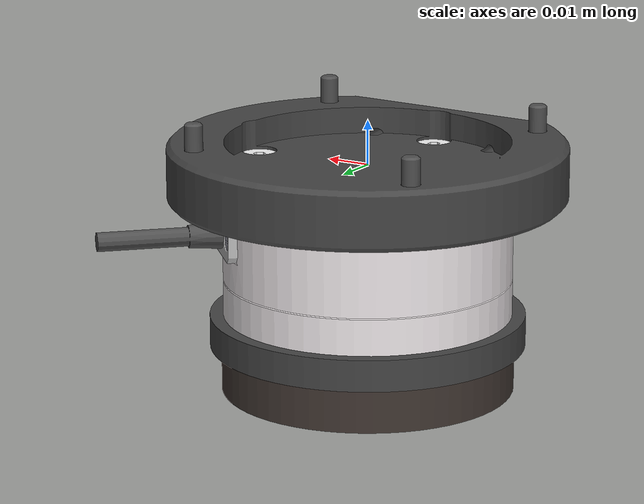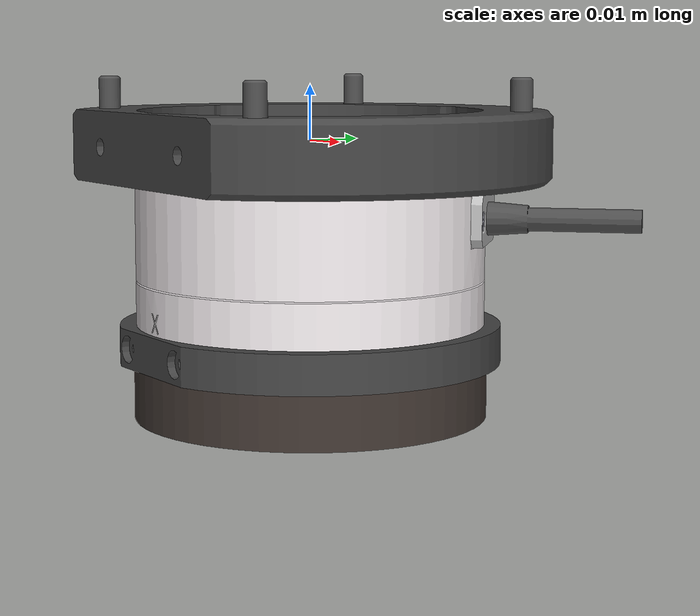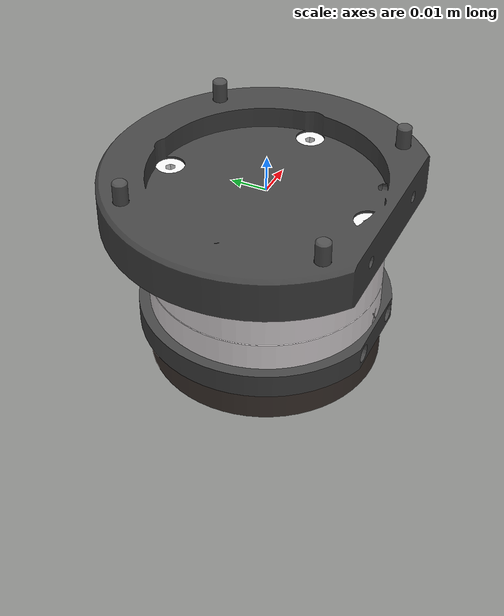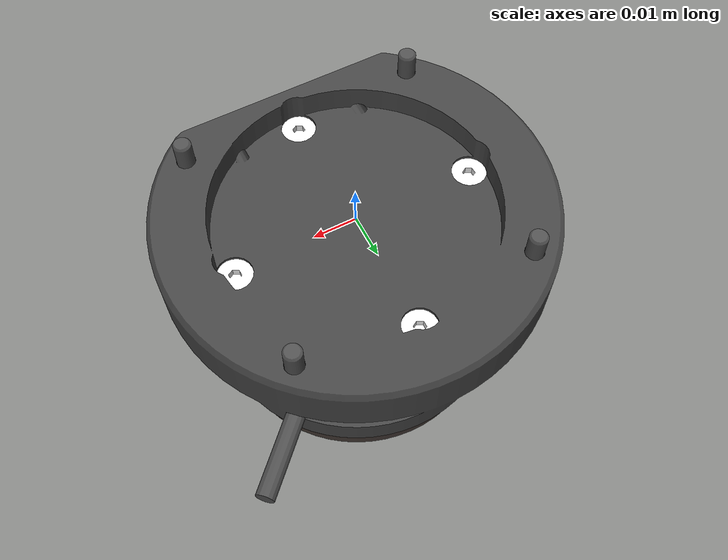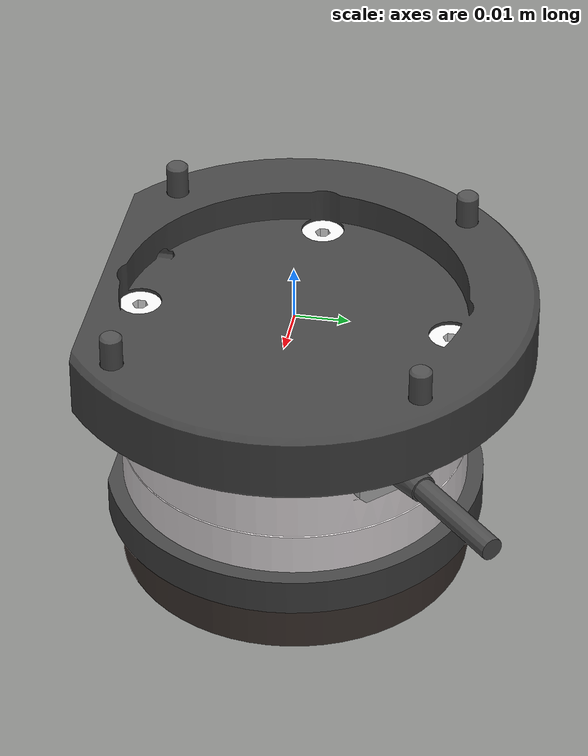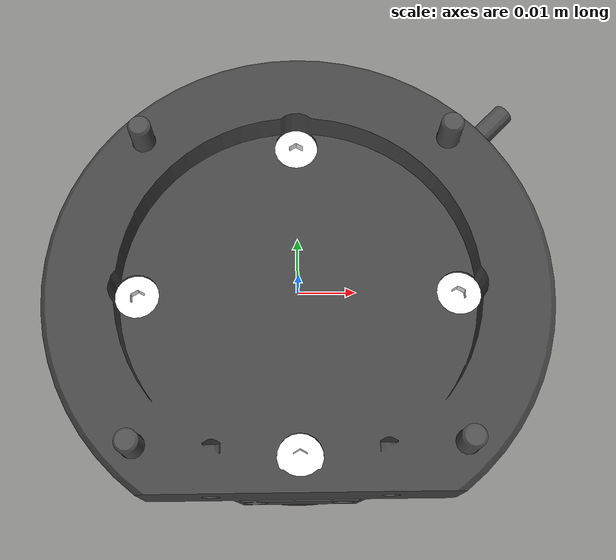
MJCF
<mujoco model="FT_SENSOR_R">
  <default>
    <default class="visual">
      <geom group="2" type="mesh" contype="0" conaffinity="0"/>
    </default>
    <default class="collision">
      <geom group="3" type="mesh"/>
    </default>
  </default>
  <asset>
    <material name="69,69,69" specular="1.0" shininess="1.0" rgba="0.270588 0.270588 0.270588 1.000000"/>
    <material name="242,236,238" specular="1.0" shininess="0.2" rgba="0.949020 0.925490 0.933333 1.000000"/>
    <material name="163,163,175" specular="1.0" shininess="0.2" rgba="0.639216 0.639216 0.686275 1.000000"/>
    <material name="192,192,192" specular="1.0" shininess="0.2" rgba="0.752941 0.752941 0.752941 1.000000"/>
    <material name="79,79,79" specular="1.0" shininess="0.2" rgba="0.309804 0.309804 0.309804 1.000000"/>
    <material name="216,214,214" specular="1.0" shininess="0.2" rgba="0.847059 0.839216 0.839216 1.000000"/>
    <material name="191,191,191" specular="0.0" shininess="0.3" rgba="0.749020 0.749020 0.749020 1.000000"/>
    <material name="244,244,244" specular="0.9568629999999999" shininess="1.0" rgba="0.956863 0.956863 0.956863 1.000000"/>
    <material name="80,80,80" specular="0.0" shininess="0.5" rgba="0.313725 0.313725 0.313725 1.000000"/>
    <material name="65,55,50" specular="1.0" shininess="0.2" rgba="0.254902 0.215686 0.196078 1.000000"/>
    <material name="254,254,255" specular="0.9973853333333333" shininess="1.0" rgba="0.996078 0.996078 1.000000 1.000000"/>
    <mesh file="FT_SENSOR_R_0.obj"/>
    <mesh file="FT_SENSOR_R_1.obj"/>
    <mesh file="FT_SENSOR_R_2.obj"/>
    <mesh file="FT_SENSOR_R_3.obj"/>
    <mesh file="FT_SENSOR_R_4.obj"/>
    <mesh file="FT_SENSOR_R_5.obj"/>
    <mesh file="FT_SENSOR_R_6.obj"/>
    <mesh file="FT_SENSOR_R_7.obj"/>
    <mesh file="FT_SENSOR_R_8.obj"/>
    <mesh file="FT_SENSOR_R_9.obj"/>
    <mesh file="FT_SENSOR_R_10.obj"/>
    <mesh file="FT_SENSOR_R_collision_0.obj"/>
    <mesh file="FT_SENSOR_R_collision_1.obj"/>
    <mesh file="FT_SENSOR_R_collision_2.obj"/>
    <mesh file="FT_SENSOR_R_collision_3.obj"/>
    <mesh file="FT_SENSOR_R_collision_4.obj"/>
    <mesh file="FT_SENSOR_R_collision_5.obj"/>
    <mesh file="FT_SENSOR_R_collision_6.obj"/>
    <mesh file="FT_SENSOR_R_collision_7.obj"/>
    <mesh file="FT_SENSOR_R_collision_8.obj"/>
    <mesh file="FT_SENSOR_R_collision_9.obj"/>
    <mesh file="FT_SENSOR_R_collision_10.obj"/>
    <mesh file="FT_SENSOR_R_collision_11.obj"/>
    <mesh file="FT_SENSOR_R_collision_12.obj"/>
    <mesh file="FT_SENSOR_R_collision_13.obj"/>
    <mesh file="FT_SENSOR_R_collision_14.obj"/>
    <mesh file="FT_SENSOR_R_collision_15.obj"/>
    <mesh file="FT_SENSOR_R_collision_16.obj"/>
    <mesh file="FT_SENSOR_R_collision_17.obj"/>
    <mesh file="FT_SENSOR_R_collision_18.obj"/>
    <mesh file="FT_SENSOR_R_collision_19.obj"/>
    <mesh file="FT_SENSOR_R_collision_20.obj"/>
    <mesh file="FT_SENSOR_R_collision_21.obj"/>
    <mesh file="FT_SENSOR_R_collision_22.obj"/>
    <mesh file="FT_SENSOR_R_collision_23.obj"/>
    <mesh file="FT_SENSOR_R_collision_24.obj"/>
    <mesh file="FT_SENSOR_R_collision_25.obj"/>
    <mesh file="FT_SENSOR_R_collision_26.obj"/>
    <mesh file="FT_SENSOR_R_collision_27.obj"/>
    <mesh file="FT_SENSOR_R_collision_28.obj"/>
    <mesh file="FT_SENSOR_R_collision_29.obj"/>
    <mesh file="FT_SENSOR_R_collision_30.obj"/>
    <mesh file="FT_SENSOR_R_collision_31.obj"/>
    <mesh file="FT_SENSOR_R_collision_32.obj"/>
    <mesh file="FT_SENSOR_R_collision_33.obj"/>
    <mesh file="FT_SENSOR_R_collision_34.obj"/>
    <mesh file="FT_SENSOR_R_collision_35.obj"/>
    <mesh file="FT_SENSOR_R_collision_36.obj"/>
    <mesh file="FT_SENSOR_R_collision_37.obj"/>
    <mesh file="FT_SENSOR_R_collision_38.obj"/>
    <mesh file="FT_SENSOR_R_collision_39.obj"/>
    <mesh file="FT_SENSOR_R_collision_40.obj"/>
    <mesh file="FT_SENSOR_R_collision_41.obj"/>
    <mesh file="FT_SENSOR_R_collision_42.obj"/>
    <mesh file="FT_SENSOR_R_collision_43.obj"/>
    <mesh file="FT_SENSOR_R_collision_44.obj"/>
    <mesh file="FT_SENSOR_R_collision_45.obj"/>
    <mesh file="FT_SENSOR_R_collision_46.obj"/>
    <mesh file="FT_SENSOR_R_collision_47.obj"/>
    <mesh file="FT_SENSOR_R_collision_48.obj"/>
    <mesh file="FT_SENSOR_R_collision_49.obj"/>
    <mesh file="FT_SENSOR_R_collision_50.obj"/>
    <mesh file="FT_SENSOR_R_collision_51.obj"/>
    <mesh file="FT_SENSOR_R_collision_52.obj"/>
    <mesh file="FT_SENSOR_R_collision_53.obj"/>
    <mesh file="FT_SENSOR_R_collision_54.obj"/>
    <mesh file="FT_SENSOR_R_collision_55.obj"/>
    <mesh file="FT_SENSOR_R_collision_56.obj"/>
    <mesh file="FT_SENSOR_R_collision_57.obj"/>
    <mesh file="FT_SENSOR_R_collision_58.obj"/>
    <mesh file="FT_SENSOR_R_collision_59.obj"/>
    <mesh file="FT_SENSOR_R_collision_60.obj"/>
    <mesh file="FT_SENSOR_R_collision_61.obj"/>
    <mesh file="FT_SENSOR_R_collision_62.obj"/>
    <mesh file="FT_SENSOR_R_collision_63.obj"/>
    <mesh file="FT_SENSOR_R_collision_64.obj"/>
    <mesh file="FT_SENSOR_R_collision_65.obj"/>
    <mesh file="FT_SENSOR_R_collision_66.obj"/>
    <mesh file="FT_SENSOR_R_collision_67.obj"/>
    <mesh file="FT_SENSOR_R_collision_68.obj"/>
    <mesh file="FT_SENSOR_R_collision_69.obj"/>
    <mesh file="FT_SENSOR_R_collision_70.obj"/>
    <mesh file="FT_SENSOR_R_collision_71.obj"/>
    <mesh file="FT_SENSOR_R_collision_72.obj"/>
    <mesh file="FT_SENSOR_R_collision_73.obj"/>
    <mesh file="FT_SENSOR_R_collision_74.obj"/>
    <mesh file="FT_SENSOR_R_collision_75.obj"/>
    <mesh file="FT_SENSOR_R_collision_76.obj"/>
    <mesh file="FT_SENSOR_R_collision_77.obj"/>
    <mesh file="FT_SENSOR_R_collision_78.obj"/>
    <mesh file="FT_SENSOR_R_collision_79.obj"/>
    <mesh file="FT_SENSOR_R_collision_80.obj"/>
    <mesh file="FT_SENSOR_R_collision_81.obj"/>
    <mesh file="FT_SENSOR_R_collision_82.obj"/>
    <mesh file="FT_SENSOR_R_collision_83.obj"/>
    <mesh file="FT_SENSOR_R_collision_84.obj"/>
    <mesh file="FT_SENSOR_R_collision_85.obj"/>
    <mesh file="FT_SENSOR_R_collision_86.obj"/>
    <mesh file="FT_SENSOR_R_collision_87.obj"/>
    <mesh file="FT_SENSOR_R_collision_88.obj"/>
    <mesh file="FT_SENSOR_R_collision_89.obj"/>
    <mesh file="FT_SENSOR_R_collision_90.obj"/>
    <mesh file="FT_SENSOR_R_collision_91.obj"/>
    <mesh file="FT_SENSOR_R_collision_92.obj"/>
    <mesh file="FT_SENSOR_R_collision_93.obj"/>
    <mesh file="FT_SENSOR_R_collision_94.obj"/>
    <mesh file="FT_SENSOR_R_collision_95.obj"/>
    <mesh file="FT_SENSOR_R_collision_96.obj"/>
    <mesh file="FT_SENSOR_R_collision_97.obj"/>
    <mesh file="FT_SENSOR_R_collision_98.obj"/>
    <mesh file="FT_SENSOR_R_collision_99.obj"/>
    <mesh file="FT_SENSOR_R_collision_100.obj"/>
    <mesh file="FT_SENSOR_R_collision_101.obj"/>
    <mesh file="FT_SENSOR_R_collision_102.obj"/>
    <mesh file="FT_SENSOR_R_collision_103.obj"/>
    <mesh file="FT_SENSOR_R_collision_104.obj"/>
    <mesh file="FT_SENSOR_R_collision_105.obj"/>
    <mesh file="FT_SENSOR_R_collision_106.obj"/>
    <mesh file="FT_SENSOR_R_collision_107.obj"/>
    <mesh file="FT_SENSOR_R_collision_108.obj"/>
    <mesh file="FT_SENSOR_R_collision_109.obj"/>
    <mesh file="FT_SENSOR_R_collision_110.obj"/>
    <mesh file="FT_SENSOR_R_collision_111.obj"/>
    <mesh file="FT_SENSOR_R_collision_112.obj"/>
  </asset>
  <worldbody>
    <body name="FT_SENSOR_R">
      <geom mesh="FT_SENSOR_R_0" material="254,254,255" class="visual"/>
      <geom mesh="FT_SENSOR_R_1" material="65,55,50" class="visual"/>
      <geom mesh="FT_SENSOR_R_2" material="80,80,80" class="visual"/>
      <geom mesh="FT_SENSOR_R_3" material="244,244,244" class="visual"/>
      <geom mesh="FT_SENSOR_R_4" material="191,191,191" class="visual"/>
      <geom mesh="FT_SENSOR_R_5" material="216,214,214" class="visual"/>
      <geom mesh="FT_SENSOR_R_6" material="79,79,79" class="visual"/>
      <geom mesh="FT_SENSOR_R_7" material="192,192,192" class="visual"/>
      <geom mesh="FT_SENSOR_R_8" material="163,163,175" class="visual"/>
      <geom mesh="FT_SENSOR_R_9" material="242,236,238" class="visual"/>
      <geom mesh="FT_SENSOR_R_10" material="69,69,69" class="visual"/>
      <geom mesh="FT_SENSOR_R_collision_0" rgba="0.017508582215660318 0.814473184273594 0.9518999303651889 1" class="collision"/>
      <geom mesh="FT_SENSOR_R_collision_1" rgba="0.21335123561175506 0.00887713200489304 0.2195498768583285 1" class="collision"/>
      <geom mesh="FT_SENSOR_R_collision_2" rgba="0.4036806817920293 0.1862564808391033 0.41061336336091103 1" class="collision"/>
      <geom mesh="FT_SENSOR_R_collision_3" rgba="0.9180973985044953 0.0889329104321287 0.6463981435224708 1" class="collision"/>
      <geom mesh="FT_SENSOR_R_collision_4" rgba="0.5257596103906108 0.06040672020459381 0.5447573103739519 1" class="collision"/>
      <geom mesh="FT_SENSOR_R_collision_5" rgba="0.5054888842443364 0.8609289340379481 0.44466408951470415 1" class="collision"/>
      <geom mesh="FT_SENSOR_R_collision_6" rgba="0.24295360958824785 0.8377739103922738 0.1065930126088106 1" class="collision"/>
      <geom mesh="FT_SENSOR_R_collision_7" rgba="0.5552366954599598 0.9271344502622424 0.7544031167800846 1" class="collision"/>
      <geom mesh="FT_SENSOR_R_collision_8" rgba="0.5303298003444306 0.7804305949394241 0.9133901549084544 1" class="collision"/>
      <geom mesh="FT_SENSOR_R_collision_9" rgba="0.7792101083595475 0.1518249027774401 0.36238062682097205 1" class="collision"/>
      <geom mesh="FT_SENSOR_R_collision_10" rgba="0.3816957217907665 0.27382797165201733 0.41413416513049206 1" class="collision"/>
      <geom mesh="FT_SENSOR_R_collision_11" rgba="0.33567013571371274 0.5658713896106602 0.5867766754269969 1" class="collision"/>
      <geom mesh="FT_SENSOR_R_collision_12" rgba="0.5985081223382921 0.6757608407109321 0.294386570035144 1" class="collision"/>
      <geom mesh="FT_SENSOR_R_collision_13" rgba="0.07609059481998792 0.9568342625658589 0.40800276516987666 1" class="collision"/>
      <geom mesh="FT_SENSOR_R_collision_14" rgba="0.4617098995719079 0.05977021251762216 0.33026491802845204 1" class="collision"/>
      <geom mesh="FT_SENSOR_R_collision_15" rgba="0.03510867041299037 0.019981660314114524 0.6602739395383831 1" class="collision"/>
      <geom mesh="FT_SENSOR_R_collision_16" rgba="0.10914437498550367 0.01488112849208345 0.32191808300883584 1" class="collision"/>
      <geom mesh="FT_SENSOR_R_collision_17" rgba="0.1112625103698821 0.6036502317378719 0.40317308539751606 1" class="collision"/>
      <geom mesh="FT_SENSOR_R_collision_18" rgba="0.9951731448113345 0.382969175930127 0.9938946173627802 1" class="collision"/>
      <geom mesh="FT_SENSOR_R_collision_19" rgba="0.21064644091418405 0.010329194685537946 0.6155807994999075 1" class="collision"/>
      <geom mesh="FT_SENSOR_R_collision_20" rgba="0.9495635924188289 0.11984101472181463 0.3907591629957523 1" class="collision"/>
      <geom mesh="FT_SENSOR_R_collision_21" rgba="0.22913531315529645 0.607274648778805 0.9373954456343924 1" class="collision"/>
      <geom mesh="FT_SENSOR_R_collision_22" rgba="0.17921597695305347 0.22501575923568196 0.7200829147523493 1" class="collision"/>
      <geom mesh="FT_SENSOR_R_collision_23" rgba="0.7203099339319852 0.977877216261583 0.7869903965673142 1" class="collision"/>
      <geom mesh="FT_SENSOR_R_collision_24" rgba="0.6645192512415542 0.9287310474331415 0.7053089853192305 1" class="collision"/>
      <geom mesh="FT_SENSOR_R_collision_25" rgba="0.7088417750131507 0.3824315328007426 0.9379665001873787 1" class="collision"/>
      <geom mesh="FT_SENSOR_R_collision_26" rgba="0.4385090688857397 0.3208511098935767 0.13156781660056271 1" class="collision"/>
      <geom mesh="FT_SENSOR_R_collision_27" rgba="0.3619919107086308 0.7691805610959821 0.08883704074947518 1" class="collision"/>
      <geom mesh="FT_SENSOR_R_collision_28" rgba="0.6547749949045271 0.30546111667150977 0.2308965556107293 1" class="collision"/>
      <geom mesh="FT_SENSOR_R_collision_29" rgba="0.7745218567292796 0.09110148132089513 0.15969836606714982 1" class="collision"/>
      <geom mesh="FT_SENSOR_R_collision_30" rgba="0.1791388461821971 0.4065318396387483 0.23887733643553366 1" class="collision"/>
      <geom mesh="FT_SENSOR_R_collision_31" rgba="0.4074391089914914 0.5558020186085225 0.028100918827060117 1" class="collision"/>
      <geom mesh="FT_SENSOR_R_collision_32" rgba="0.48244899356542437 0.7872883871297658 0.053882032123417134 1" class="collision"/>
      <geom mesh="FT_SENSOR_R_collision_33" rgba="0.7823780372539882 0.9521759222235195 0.1338434370128262 1" class="collision"/>
      <geom mesh="FT_SENSOR_R_collision_34" rgba="0.7739782549150371 0.8547797633830491 0.13055341259298325 1" class="collision"/>
      <geom mesh="FT_SENSOR_R_collision_35" rgba="0.3555300230332604 0.44570032358366873 0.750414557022807 1" class="collision"/>
      <geom mesh="FT_SENSOR_R_collision_36" rgba="0.4318001898449446 0.019933533300783512 0.8071641088148627 1" class="collision"/>
      <geom mesh="FT_SENSOR_R_collision_37" rgba="0.7107579391850906 0.9098346898775085 0.7608727396034741 1" class="collision"/>
      <geom mesh="FT_SENSOR_R_collision_38" rgba="0.6118691302190344 0.74288762060734 0.714592162782586 1" class="collision"/>
      <geom mesh="FT_SENSOR_R_collision_39" rgba="0.6043479402921301 0.998287075951369 0.9561778039900489 1" class="collision"/>
      <geom mesh="FT_SENSOR_R_collision_40" rgba="0.7582244981542892 0.5302492929464897 0.3318753976081069 1" class="collision"/>
      <geom mesh="FT_SENSOR_R_collision_41" rgba="0.47572030469505333 0.2496896467114993 0.11654333972589526 1" class="collision"/>
      <geom mesh="FT_SENSOR_R_collision_42" rgba="0.136541658765008 0.8521616261166508 0.09569818400529595 1" class="collision"/>
      <geom mesh="FT_SENSOR_R_collision_43" rgba="0.14570268148266052 0.08352104251979453 0.8237187213409547 1" class="collision"/>
      <geom mesh="FT_SENSOR_R_collision_44" rgba="0.40356817390352673 0.20868473531684673 0.8982810162034701 1" class="collision"/>
      <geom mesh="FT_SENSOR_R_collision_45" rgba="0.17970274518477525 0.08904946212673726 0.20706418069188237 1" class="collision"/>
      <geom mesh="FT_SENSOR_R_collision_46" rgba="0.33154159506432446 0.24471013381837037 0.27821097537389783 1" class="collision"/>
      <geom mesh="FT_SENSOR_R_collision_47" rgba="0.39915847703004537 0.9522711513377305 0.3101400315026358 1" class="collision"/>
      <geom mesh="FT_SENSOR_R_collision_48" rgba="0.6328667337088513 0.7217576241532537 0.6635178271401614 1" class="collision"/>
      <geom mesh="FT_SENSOR_R_collision_49" rgba="0.5653976361519704 0.04815047449224874 0.9389519890581748 1" class="collision"/>
      <geom mesh="FT_SENSOR_R_collision_50" rgba="0.6026027176590699 0.8446395196754833 0.7474170002693344 1" class="collision"/>
      <geom mesh="FT_SENSOR_R_collision_51" rgba="0.607557686845622 0.597100857154782 0.8038020749455768 1" class="collision"/>
      <geom mesh="FT_SENSOR_R_collision_52" rgba="0.6008612281173155 0.11640578119350475 0.7717270625800762 1" class="collision"/>
      <geom mesh="FT_SENSOR_R_collision_53" rgba="0.0882721021383327 0.05748373582713273 0.2208780168708061 1" class="collision"/>
      <geom mesh="FT_SENSOR_R_collision_54" rgba="0.660940355259083 0.9842680435861917 0.20304153086804666 1" class="collision"/>
      <geom mesh="FT_SENSOR_R_collision_55" rgba="0.18479258781899 0.3506812348895334 0.14529734081980117 1" class="collision"/>
      <geom mesh="FT_SENSOR_R_collision_56" rgba="0.7313827695939422 0.5001394733366173 0.3718682010401023 1" class="collision"/>
      <geom mesh="FT_SENSOR_R_collision_57" rgba="0.5915808932892223 0.3136119519015058 0.5985051264158961 1" class="collision"/>
      <geom mesh="FT_SENSOR_R_collision_58" rgba="0.39354595610237564 0.9410195395774734 0.38630638013698204 1" class="collision"/>
      <geom mesh="FT_SENSOR_R_collision_59" rgba="0.06997375455269372 0.8431369605000554 0.6105542595422737 1" class="collision"/>
      <geom mesh="FT_SENSOR_R_collision_60" rgba="0.8369225722111182 0.6170908384886822 0.07570566143960022 1" class="collision"/>
      <geom mesh="FT_SENSOR_R_collision_61" rgba="0.48990079305287415 0.996421878446835 0.5716920863373209 1" class="collision"/>
      <geom mesh="FT_SENSOR_R_collision_62" rgba="0.8806783947279262 0.6396027248177985 0.005143628601127825 1" class="collision"/>
      <geom mesh="FT_SENSOR_R_collision_63" rgba="0.8568369545337259 0.9516502520482082 0.06805315892893438 1" class="collision"/>
      <geom mesh="FT_SENSOR_R_collision_64" rgba="0.8332248277995062 0.6848384668776585 0.3170922552969757 1" class="collision"/>
      <geom mesh="FT_SENSOR_R_collision_65" rgba="0.5514129424964134 0.10949031761887706 0.2324443615965901 1" class="collision"/>
      <geom mesh="FT_SENSOR_R_collision_66" rgba="0.9050125877313003 0.1820751057959311 0.5128377465870458 1" class="collision"/>
      <geom mesh="FT_SENSOR_R_collision_67" rgba="0.9259109704126255 0.2972463078704357 0.018996024645244303 1" class="collision"/>
      <geom mesh="FT_SENSOR_R_collision_68" rgba="0.3848346410565764 0.80966967763664 0.5725891682396601 1" class="collision"/>
      <geom mesh="FT_SENSOR_R_collision_69" rgba="0.41222408148694134 0.8593144934352027 0.7554951372790768 1" class="collision"/>
      <geom mesh="FT_SENSOR_R_collision_70" rgba="0.051832408899816884 0.43516750501221135 0.9475258619649708 1" class="collision"/>
      <geom mesh="FT_SENSOR_R_collision_71" rgba="0.2918741952154268 0.9786102808795081 0.15892768529800516 1" class="collision"/>
      <geom mesh="FT_SENSOR_R_collision_72" rgba="0.6421056245534451 0.20893656596365417 0.37987604535033226 1" class="collision"/>
      <geom mesh="FT_SENSOR_R_collision_73" rgba="0.8496113981987421 0.9291998540656389 0.4015137456269403 1" class="collision"/>
      <geom mesh="FT_SENSOR_R_collision_74" rgba="0.9219773113787564 0.3754023044366639 0.18162652174271332 1" class="collision"/>
      <geom mesh="FT_SENSOR_R_collision_75" rgba="0.9626032382767518 0.10850318601819331 0.15873234638078015 1" class="collision"/>
      <geom mesh="FT_SENSOR_R_collision_76" rgba="0.6595503835191922 0.8255314303392989 0.14406282840202855 1" class="collision"/>
      <geom mesh="FT_SENSOR_R_collision_77" rgba="0.0766177618941204 0.999832040616436 0.9050677310080861 1" class="collision"/>
      <geom mesh="FT_SENSOR_R_collision_78" rgba="0.7895243362498148 0.20727431336559587 0.4477100425223842 1" class="collision"/>
      <geom mesh="FT_SENSOR_R_collision_79" rgba="0.1879541127158696 0.5675101206104399 0.8184415194303861 1" class="collision"/>
      <geom mesh="FT_SENSOR_R_collision_80" rgba="0.16889386116502325 0.5855232679853548 0.2722758452589059 1" class="collision"/>
      <geom mesh="FT_SENSOR_R_collision_81" rgba="0.8185173820740625 0.3913437651543651 0.9965720057782183 1" class="collision"/>
      <geom mesh="FT_SENSOR_R_collision_82" rgba="0.621579637014727 0.9323291238320356 0.7395456302982507 1" class="collision"/>
      <geom mesh="FT_SENSOR_R_collision_83" rgba="0.8094612310603775 0.17089081693076902 0.8915510189531317 1" class="collision"/>
      <geom mesh="FT_SENSOR_R_collision_84" rgba="0.5186675130181393 0.9009790415439264 0.14036427251395356 1" class="collision"/>
      <geom mesh="FT_SENSOR_R_collision_85" rgba="0.9678304693024733 0.401723559488819 0.3971141561598909 1" class="collision"/>
      <geom mesh="FT_SENSOR_R_collision_86" rgba="0.20296619139198802 0.89883991670084 0.7671321971428716 1" class="collision"/>
      <geom mesh="FT_SENSOR_R_collision_87" rgba="0.47489774425687925 0.27352102781148124 0.9314385347978876 1" class="collision"/>
      <geom mesh="FT_SENSOR_R_collision_88" rgba="0.47847060353891857 0.9195188147365143 0.26620470906361615 1" class="collision"/>
      <geom mesh="FT_SENSOR_R_collision_89" rgba="0.2690634787400322 0.29968536173248783 0.9359355116279919 1" class="collision"/>
      <geom mesh="FT_SENSOR_R_collision_90" rgba="0.1526558715048888 0.1808619985281078 0.46270483106042914 1" class="collision"/>
      <geom mesh="FT_SENSOR_R_collision_91" rgba="0.6231429486476012 0.20607456102232813 0.233514619828869 1" class="collision"/>
      <geom mesh="FT_SENSOR_R_collision_92" rgba="0.4063651562847824 0.728879141297849 0.3048944714634 1" class="collision"/>
      <geom mesh="FT_SENSOR_R_collision_93" rgba="0.5926761775333094 0.5790194861482459 0.7311144296028336 1" class="collision"/>
      <geom mesh="FT_SENSOR_R_collision_94" rgba="0.45848086205456784 0.2856395742671959 0.727769797128301 1" class="collision"/>
      <geom mesh="FT_SENSOR_R_collision_95" rgba="0.11240634607574052 0.3605202575119083 0.8252903479973873 1" class="collision"/>
      <geom mesh="FT_SENSOR_R_collision_96" rgba="0.627974716474874 0.47426064081689057 0.10217333032009868 1" class="collision"/>
      <geom mesh="FT_SENSOR_R_collision_97" rgba="0.6920734432826329 0.7006664964752265 0.8324740565378612 1" class="collision"/>
      <geom mesh="FT_SENSOR_R_collision_98" rgba="0.9230920340264775 0.5982569570131376 0.7586385120435102 1" class="collision"/>
      <geom mesh="FT_SENSOR_R_collision_99" rgba="0.2963979159001524 0.6406039924314877 0.16891119976107882 1" class="collision"/>
      <geom mesh="FT_SENSOR_R_collision_100" rgba="0.3642401377077683 0.08696667044778117 0.06789504370927968 1" class="collision"/>
      <geom mesh="FT_SENSOR_R_collision_101" rgba="0.11072220156491497 0.9718914395707902 0.5428994449478669 1" class="collision"/>
      <geom mesh="FT_SENSOR_R_collision_102" rgba="0.4079990212299649 0.06801567191428304 0.13325833192984304 1" class="collision"/>
      <geom mesh="FT_SENSOR_R_collision_103" rgba="0.9375435298122794 0.045404034244393765 0.9759774180513999 1" class="collision"/>
      <geom mesh="FT_SENSOR_R_collision_104" rgba="0.22419328956744056 0.5873216095105191 0.6028263107670505 1" class="collision"/>
      <geom mesh="FT_SENSOR_R_collision_105" rgba="0.5951426991182414 0.40131647840311013 0.24100231184475807 1" class="collision"/>
      <geom mesh="FT_SENSOR_R_collision_106" rgba="0.9928330667244348 0.12990834324526768 0.22752937785040828 1" class="collision"/>
      <geom mesh="FT_SENSOR_R_collision_107" rgba="0.4514365945736557 0.7223890711134396 0.04411332239757115 1" class="collision"/>
      <geom mesh="FT_SENSOR_R_collision_108" rgba="0.5501252597885936 0.8137608013308881 0.5549374322268443 1" class="collision"/>
      <geom mesh="FT_SENSOR_R_collision_109" rgba="0.26129568114182977 0.46544076594410144 0.8204101073941072 1" class="collision"/>
      <geom mesh="FT_SENSOR_R_collision_110" rgba="0.014972953885236562 0.29874625853518155 0.2280177548591119 1" class="collision"/>
      <geom mesh="FT_SENSOR_R_collision_111" rgba="0.18060837321124534 0.22205802252458817 0.6884753048755633 1" class="collision"/>
      <geom mesh="FT_SENSOR_R_collision_112" rgba="0.4296042277242347 0.7142623452562701 0.5340401058852431 1" class="collision"/>
    </body>
  </worldbody>
</mujoco>
